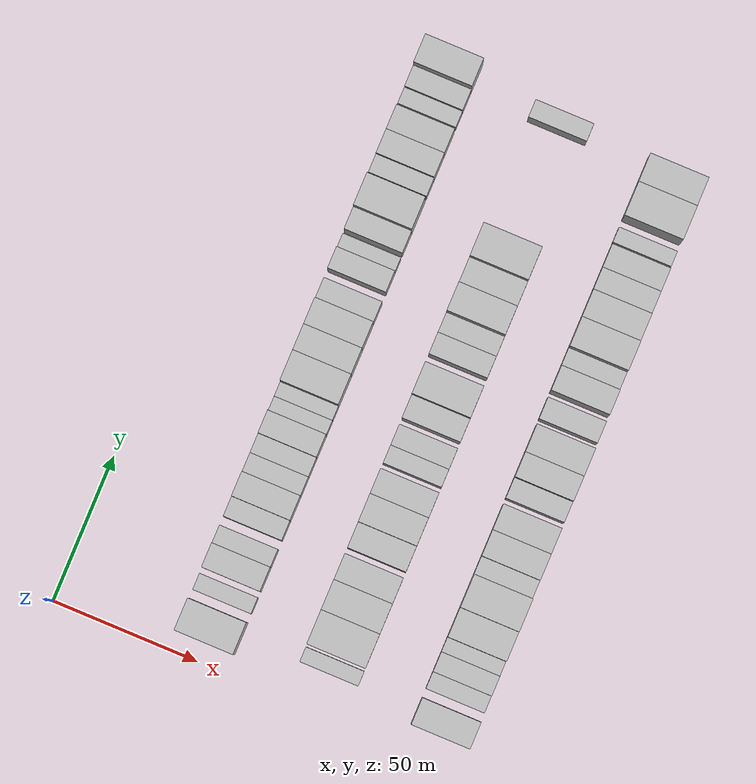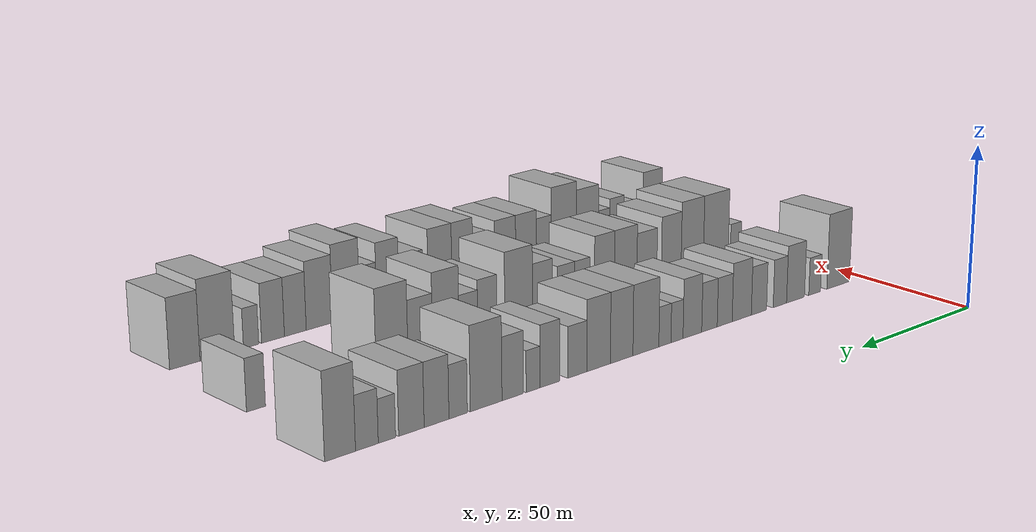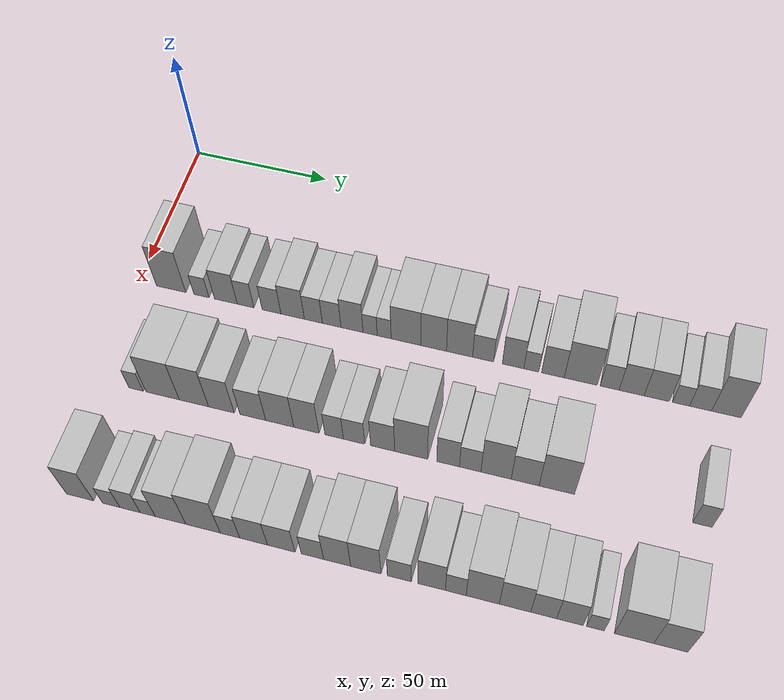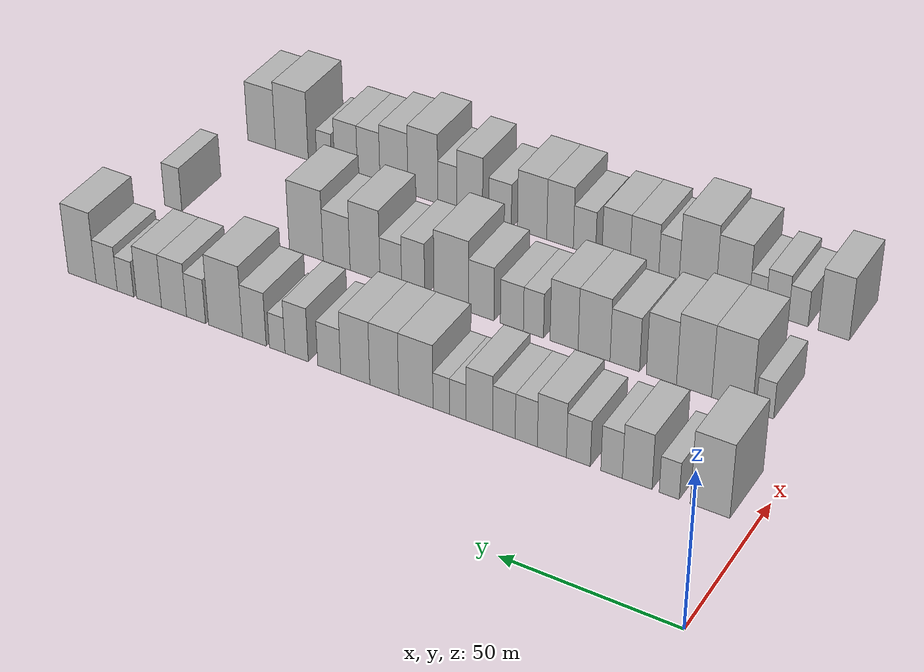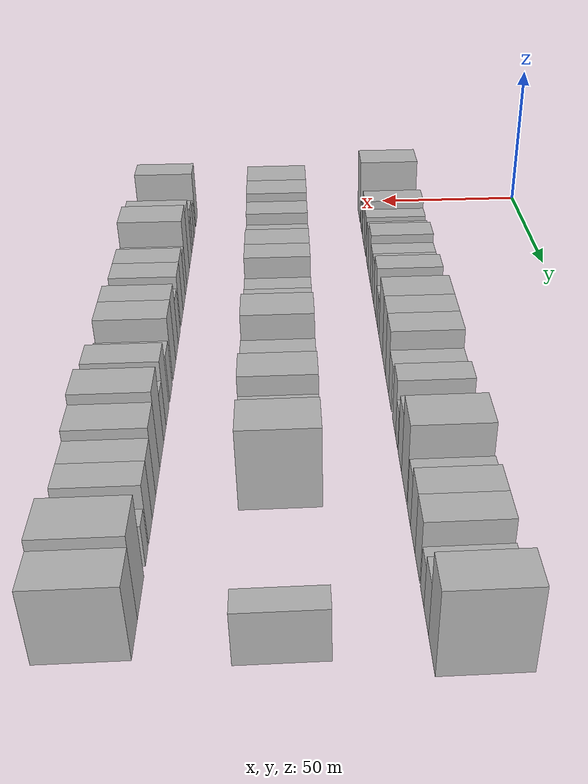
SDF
<sdf version="1.6">
 <world name="default">
  <model name="building_41">
   <static>1</static>
   <pose>50.0000 12.1011 0 0.000000 0.000000 0.000000</pose>
   <link name="link">
    <pose>0 0 12.00 0 0 0</pose>
    <collision name="collision"><geometry><box><size>20.0000 10.9155 24.0000</size></box></geometry></collision>
    <visual name="visual">
     <cast_shadows>0</cast_shadows>
     <geometry><box><size>20.0000 10.9155 24.0000</size></box></geometry>
     <material>
      <script>
       <uri>model://HANNAS_wall/materials/scripts</uri>
       <uri>model://HANNAS_wall/materials/textures</uri>
       <name>vrc/HANNAS_wall</name>
      </script>
     </material>
    </visual>
   </link>
  </model>
  <model name="building_42">
   <static>1</static>
   <pose>50.0000 23.3495 0 0.000000 0.000000 0.000000</pose>
   <link name="link">
    <pose>0 0 6.00 0 0 0</pose>
    <collision name="collision"><geometry><box><size>20.0000 5.5812 12.0000</size></box></geometry></collision>
    <visual name="visual">
     <cast_shadows>0</cast_shadows>
     <geometry><box><size>20.0000 5.5812 12.0000</size></box></geometry>
     <material>
      <script>
       <uri>model://HANNAS_wall/materials/scripts</uri>
       <uri>model://HANNAS_wall/materials/textures</uri>
       <name>vrc/HANNAS_wall</name>
      </script>
     </material>
    </visual>
   </link>
  </model>
  <model name="building_43">
   <static>1</static>
   <pose>50.0000 32.3095 0 0.000000 0.000000 0.000000</pose>
   <link name="link">
    <pose>0 0 9.00 0 0 0</pose>
    <collision name="collision"><geometry><box><size>20.0000 8.3389 18.0000</size></box></geometry></collision>
    <visual name="visual">
     <cast_shadows>0</cast_shadows>
     <geometry><box><size>20.0000 8.3389 18.0000</size></box></geometry>
     <material>
      <script>
       <uri>model://HANNAS_wall/materials/scripts</uri>
       <uri>model://HANNAS_wall/materials/textures</uri>
       <name>vrc/HANNAS_wall</name>
      </script>
     </material>
    </visual>
   </link>
  </model>
  <model name="building_44">
   <static>1</static>
   <pose>50.0000 39.5402 0 0.000000 0.000000 0.000000</pose>
   <link name="link">
    <pose>0 0 7.50 0 0 0</pose>
    <collision name="collision"><geometry><box><size>20.0000 6.1225 15.0000</size></box></geometry></collision>
    <visual name="visual">
     <cast_shadows>0</cast_shadows>
     <geometry><box><size>20.0000 6.1225 15.0000</size></box></geometry>
     <material>
      <script>
       <uri>model://HANNAS_wall/materials/scripts</uri>
       <uri>model://HANNAS_wall/materials/textures</uri>
       <name>vrc/HANNAS_wall</name>
      </script>
     </material>
    </visual>
   </link>
  </model>
  <model name="building_45">
   <static>1</static>
   <pose>50.0000 49.0186 0 0.000000 0.000000 0.000000</pose>
   <link name="link">
    <pose>0 0 7.50 0 0 0</pose>
    <collision name="collision"><geometry><box><size>20.0000 6.8342 15.0000</size></box></geometry></collision>
    <visual name="visual">
     <cast_shadows>0</cast_shadows>
     <geometry><box><size>20.0000 6.8342 15.0000</size></box></geometry>
     <material>
      <script>
       <uri>model://HANNAS_wall/materials/scripts</uri>
       <uri>model://HANNAS_wall/materials/textures</uri>
       <name>vrc/HANNAS_wall</name>
      </script>
     </material>
    </visual>
   </link>
  </model>
  <model name="building_46">
   <static>1</static>
   <pose>50.0000 56.6620 0 0.000000 0.000000 0.000000</pose>
   <link name="link">
    <pose>0 0 9.00 0 0 0</pose>
    <collision name="collision"><geometry><box><size>20.0000 8.4526 18.0000</size></box></geometry></collision>
    <visual name="visual">
     <cast_shadows>0</cast_shadows>
     <geometry><box><size>20.0000 8.4526 18.0000</size></box></geometry>
     <material>
      <script>
       <uri>model://HANNAS_wall/materials/scripts</uri>
       <uri>model://HANNAS_wall/materials/textures</uri>
       <name>vrc/HANNAS_wall</name>
      </script>
     </material>
    </visual>
   </link>
  </model>
  <model name="building_47">
   <static>1</static>
   <pose>50.0000 64.1325 0 0.000000 0.000000 0.000000</pose>
   <link name="link">
    <pose>0 0 7.50 0 0 0</pose>
    <collision name="collision"><geometry><box><size>20.0000 6.4883 15.0000</size></box></geometry></collision>
    <visual name="visual">
     <cast_shadows>0</cast_shadows>
     <geometry><box><size>20.0000 6.4883 15.0000</size></box></geometry>
     <material>
      <script>
       <uri>model://HANNAS_wall/materials/scripts</uri>
       <uri>model://HANNAS_wall/materials/textures</uri>
       <name>vrc/HANNAS_wall</name>
      </script>
     </material>
    </visual>
   </link>
  </model>
  <model name="building_48">
   <static>1</static>
   <pose>50.0000 70.6933 0 0.000000 0.000000 0.000000</pose>
   <link name="link">
    <pose>0 0 7.50 0 0 0</pose>
    <collision name="collision"><geometry><box><size>20.0000 6.6332 15.0000</size></box></geometry></collision>
    <visual name="visual">
     <cast_shadows>0</cast_shadows>
     <geometry><box><size>20.0000 6.6332 15.0000</size></box></geometry>
     <material>
      <script>
       <uri>model://HANNAS_wall/materials/scripts</uri>
       <uri>model://HANNAS_wall/materials/textures</uri>
       <name>vrc/HANNAS_wall</name>
      </script>
     </material>
    </visual>
   </link>
  </model>
  <model name="building_49">
   <static>1</static>
   <pose>50.0000 77.9368 0 0.000000 0.000000 0.000000</pose>
   <link name="link">
    <pose>0 0 9.00 0 0 0</pose>
    <collision name="collision"><geometry><box><size>20.0000 7.8539 18.0000</size></box></geometry></collision>
    <visual name="visual">
     <cast_shadows>0</cast_shadows>
     <geometry><box><size>20.0000 7.8539 18.0000</size></box></geometry>
     <material>
      <script>
       <uri>model://HANNAS_wall/materials/scripts</uri>
       <uri>model://HANNAS_wall/materials/textures</uri>
       <name>vrc/HANNAS_wall</name>
      </script>
     </material>
    </visual>
   </link>
  </model>
  <model name="building_50">
   <static>1</static>
   <pose>50.0000 84.3722 0 0.000000 0.000000 0.000000</pose>
   <link name="link">
    <pose>0 0 6.00 0 0 0</pose>
    <collision name="collision"><geometry><box><size>20.0000 5.0170 12.0000</size></box></geometry></collision>
    <visual name="visual">
     <cast_shadows>0</cast_shadows>
     <geometry><box><size>20.0000 5.0170 12.0000</size></box></geometry>
     <material>
      <script>
       <uri>model://HANNAS_wall/materials/scripts</uri>
       <uri>model://HANNAS_wall/materials/textures</uri>
       <name>vrc/HANNAS_wall</name>
      </script>
     </material>
    </visual>
   </link>
  </model>
  <model name="building_51">
   <static>1</static>
   <pose>50.0000 89.3582 0 0.000000 0.000000 0.000000</pose>
   <link name="link">
    <pose>0 0 6.00 0 0 0</pose>
    <collision name="collision"><geometry><box><size>20.0000 4.9549 12.0000</size></box></geometry></collision>
    <visual name="visual">
     <cast_shadows>0</cast_shadows>
     <geometry><box><size>20.0000 4.9549 12.0000</size></box></geometry>
     <material>
      <script>
       <uri>model://HANNAS_wall/materials/scripts</uri>
       <uri>model://HANNAS_wall/materials/textures</uri>
       <name>vrc/HANNAS_wall</name>
      </script>
     </material>
    </visual>
   </link>
  </model>
  <model name="building_52">
   <static>1</static>
   <pose>50.0000 97.0628 0 0.000000 0.000000 0.000000</pose>
   <link name="link">
    <pose>0 0 10.50 0 0 0</pose>
    <collision name="collision"><geometry><box><size>20.0000 10.4544 21.0000</size></box></geometry></collision>
    <visual name="visual">
     <cast_shadows>0</cast_shadows>
     <geometry><box><size>20.0000 10.4544 21.0000</size></box></geometry>
     <material>
      <script>
       <uri>model://HANNAS_wall/materials/scripts</uri>
       <uri>model://HANNAS_wall/materials/textures</uri>
       <name>vrc/HANNAS_wall</name>
      </script>
     </material>
    </visual>
   </link>
  </model>
  <model name="building_53">
   <static>1</static>
   <pose>50.0000 106.7404 0 0.000000 0.000000 0.000000</pose>
   <link name="link">
    <pose>0 0 10.50 0 0 0</pose>
    <collision name="collision"><geometry><box><size>20.0000 8.9007 21.0000</size></box></geometry></collision>
    <visual name="visual">
     <cast_shadows>0</cast_shadows>
     <geometry><box><size>20.0000 8.9007 21.0000</size></box></geometry>
     <material>
      <script>
       <uri>model://HANNAS_wall/materials/scripts</uri>
       <uri>model://HANNAS_wall/materials/textures</uri>
       <name>vrc/HANNAS_wall</name>
      </script>
     </material>
    </visual>
   </link>
  </model>
  <model name="building_54">
   <static>1</static>
   <pose>50.0000 115.7202 0 0.000000 0.000000 0.000000</pose>
   <link name="link">
    <pose>0 0 10.50 0 0 0</pose>
    <collision name="collision"><geometry><box><size>20.0000 9.0589 21.0000</size></box></geometry></collision>
    <visual name="visual">
     <cast_shadows>0</cast_shadows>
     <geometry><box><size>20.0000 9.0589 21.0000</size></box></geometry>
     <material>
      <script>
       <uri>model://HANNAS_wall/materials/scripts</uri>
       <uri>model://HANNAS_wall/materials/textures</uri>
       <name>vrc/HANNAS_wall</name>
      </script>
     </material>
    </visual>
   </link>
  </model>
  <model name="building_55">
   <static>1</static>
   <pose>50.0000 123.8697 0 0.000000 0.000000 0.000000</pose>
   <link name="link">
    <pose>0 0 7.50 0 0 0</pose>
    <collision name="collision"><geometry><box><size>20.0000 7.2401 15.0000</size></box></geometry></collision>
    <visual name="visual">
     <cast_shadows>0</cast_shadows>
     <geometry><box><size>20.0000 7.2401 15.0000</size></box></geometry>
     <material>
      <script>
       <uri>model://HANNAS_wall/materials/scripts</uri>
       <uri>model://HANNAS_wall/materials/textures</uri>
       <name>vrc/HANNAS_wall</name>
      </script>
     </material>
    </visual>
   </link>
  </model>
  <model name="building_56">
   <static>1</static>
   <pose>50.0000 134.1823 0 0.000000 0.000000 0.000000</pose>
   <link name="link">
    <pose>0 0 9.00 0 0 0</pose>
    <collision name="collision"><geometry><box><size>20.0000 7.3850 18.0000</size></box></geometry></collision>
    <visual name="visual">
     <cast_shadows>0</cast_shadows>
     <geometry><box><size>20.0000 7.3850 18.0000</size></box></geometry>
     <material>
      <script>
       <uri>model://HANNAS_wall/materials/scripts</uri>
       <uri>model://HANNAS_wall/materials/textures</uri>
       <name>vrc/HANNAS_wall</name>
      </script>
     </material>
    </visual>
   </link>
  </model>
  <model name="building_57">
   <static>1</static>
   <pose>50.0000 140.3996 0 0.000000 0.000000 0.000000</pose>
   <link name="link">
    <pose>0 0 6.00 0 0 0</pose>
    <collision name="collision"><geometry><box><size>20.0000 5.0495 12.0000</size></box></geometry></collision>
    <visual name="visual">
     <cast_shadows>0</cast_shadows>
     <geometry><box><size>20.0000 5.0495 12.0000</size></box></geometry>
     <material>
      <script>
       <uri>model://HANNAS_wall/materials/scripts</uri>
       <uri>model://HANNAS_wall/materials/textures</uri>
       <name>vrc/HANNAS_wall</name>
      </script>
     </material>
    </visual>
   </link>
  </model>
  <model name="building_58">
   <static>1</static>
   <pose>50.0000 147.7551 0 0.000000 0.000000 0.000000</pose>
   <link name="link">
    <pose>0 0 9.00 0 0 0</pose>
    <collision name="collision"><geometry><box><size>20.0000 7.6616 18.0000</size></box></geometry></collision>
    <visual name="visual">
     <cast_shadows>0</cast_shadows>
     <geometry><box><size>20.0000 7.6616 18.0000</size></box></geometry>
     <material>
      <script>
       <uri>model://HANNAS_wall/materials/scripts</uri>
       <uri>model://HANNAS_wall/materials/textures</uri>
       <name>vrc/HANNAS_wall</name>
      </script>
     </material>
    </visual>
   </link>
  </model>
  <model name="building_59">
   <static>1</static>
   <pose>50.0000 157.1529 0 0.000000 0.000000 0.000000</pose>
   <link name="link">
    <pose>0 0 12.00 0 0 0</pose>
    <collision name="collision"><geometry><box><size>20.0000 11.1340 24.0000</size></box></geometry></collision>
    <visual name="visual">
     <cast_shadows>0</cast_shadows>
     <geometry><box><size>20.0000 11.1340 24.0000</size></box></geometry>
     <material>
      <script>
       <uri>model://HANNAS_wall/materials/scripts</uri>
       <uri>model://HANNAS_wall/materials/textures</uri>
       <name>vrc/HANNAS_wall</name>
      </script>
     </material>
    </visual>
   </link>
  </model>
  <model name="building_60">
   <static>1</static>
   <pose>50.0000 166.8681 0 0.000000 0.000000 0.000000</pose>
   <link name="link">
    <pose>0 0 7.50 0 0 0</pose>
    <collision name="collision"><geometry><box><size>20.0000 6.2963 15.0000</size></box></geometry></collision>
    <visual name="visual">
     <cast_shadows>0</cast_shadows>
     <geometry><box><size>20.0000 6.2963 15.0000</size></box></geometry>
     <material>
      <script>
       <uri>model://HANNAS_wall/materials/scripts</uri>
       <uri>model://HANNAS_wall/materials/textures</uri>
       <name>vrc/HANNAS_wall</name>
      </script>
     </material>
    </visual>
   </link>
  </model>
  <model name="building_61">
   <static>1</static>
   <pose>50.0000 174.1851 0 0.000000 0.000000 0.000000</pose>
   <link name="link">
    <pose>0 0 9.00 0 0 0</pose>
    <collision name="collision"><geometry><box><size>20.0000 8.3378 18.0000</size></box></geometry></collision>
    <visual name="visual">
     <cast_shadows>0</cast_shadows>
     <geometry><box><size>20.0000 8.3378 18.0000</size></box></geometry>
     <material>
      <script>
       <uri>model://HANNAS_wall/materials/scripts</uri>
       <uri>model://HANNAS_wall/materials/textures</uri>
       <name>vrc/HANNAS_wall</name>
      </script>
     </material>
    </visual>
   </link>
  </model>
  <model name="building_62">
   <static>1</static>
   <pose>50.0000 182.5561 0 0.000000 0.000000 0.000000</pose>
   <link name="link">
    <pose>0 0 9.00 0 0 0</pose>
    <collision name="collision"><geometry><box><size>20.0000 8.4043 18.0000</size></box></geometry></collision>
    <visual name="visual">
     <cast_shadows>0</cast_shadows>
     <geometry><box><size>20.0000 8.4043 18.0000</size></box></geometry>
     <material>
      <script>
       <uri>model://HANNAS_wall/materials/scripts</uri>
       <uri>model://HANNAS_wall/materials/textures</uri>
       <name>vrc/HANNAS_wall</name>
      </script>
     </material>
    </visual>
   </link>
  </model>
  <model name="building_63">
   <static>1</static>
   <pose>50.0000 190.5556 0 0.000000 0.000000 0.000000</pose>
   <link name="link">
    <pose>0 0 6.00 0 0 0</pose>
    <collision name="collision"><geometry><box><size>20.0000 5.5946 12.0000</size></box></geometry></collision>
    <visual name="visual">
     <cast_shadows>0</cast_shadows>
     <geometry><box><size>20.0000 5.5946 12.0000</size></box></geometry>
     <material>
      <script>
       <uri>model://HANNAS_wall/materials/scripts</uri>
       <uri>model://HANNAS_wall/materials/textures</uri>
       <name>vrc/HANNAS_wall</name>
      </script>
     </material>
    </visual>
   </link>
  </model>
  <model name="building_64">
   <static>1</static>
   <pose>50.0000 196.9684 0 0.000000 0.000000 0.000000</pose>
   <link name="link">
    <pose>0 0 7.50 0 0 0</pose>
    <collision name="collision"><geometry><box><size>20.0000 7.2310 15.0000</size></box></geometry></collision>
    <visual name="visual">
     <cast_shadows>0</cast_shadows>
     <geometry><box><size>20.0000 7.2310 15.0000</size></box></geometry>
     <material>
      <script>
       <uri>model://HANNAS_wall/materials/scripts</uri>
       <uri>model://HANNAS_wall/materials/textures</uri>
       <name>vrc/HANNAS_wall</name>
      </script>
     </material>
    </visual>
   </link>
  </model>
  <model name="building_65">
   <static>1</static>
   <pose>50.0000 205.4132 0 0.000000 0.000000 0.000000</pose>
   <link name="link">
    <pose>0 0 12.00 0 0 0</pose>
    <collision name="collision"><geometry><box><size>20.0000 9.6585 24.0000</size></box></geometry></collision>
    <visual name="visual">
     <cast_shadows>0</cast_shadows>
     <geometry><box><size>20.0000 9.6585 24.0000</size></box></geometry>
     <material>
      <script>
       <uri>model://HANNAS_wall/materials/scripts</uri>
       <uri>model://HANNAS_wall/materials/textures</uri>
       <name>vrc/HANNAS_wall</name>
      </script>
     </material>
    </visual>
   </link>
  </model>
  <model name="building_132">
   <static>1</static>
   <pose>90.0000 15.1945 0 0.000000 0.000000 0.000000</pose>
   <link name="link">
    <pose>0 0 6.00 0 0 0</pose>
    <collision name="collision"><geometry><box><size>20.0000 5.0530 12.0000</size></box></geometry></collision>
    <visual name="visual">
     <cast_shadows>0</cast_shadows>
     <geometry><box><size>20.0000 5.0530 12.0000</size></box></geometry>
     <material>
      <script>
       <uri>model://HANNAS_wall/materials/scripts</uri>
       <uri>model://HANNAS_wall/materials/textures</uri>
       <name>vrc/HANNAS_wall</name>
      </script>
     </material>
    </visual>
   </link>
  </model>
  <model name="building_133">
   <static>1</static>
   <pose>90.0000 24.5679 0 0.000000 0.000000 0.000000</pose>
   <link name="link">
    <pose>0 0 12.00 0 0 0</pose>
    <collision name="collision"><geometry><box><size>20.0000 11.6937 24.0000</size></box></geometry></collision>
    <visual name="visual">
     <cast_shadows>0</cast_shadows>
     <geometry><box><size>20.0000 11.6937 24.0000</size></box></geometry>
     <material>
      <script>
       <uri>model://HANNAS_wall/materials/scripts</uri>
       <uri>model://HANNAS_wall/materials/textures</uri>
       <name>vrc/HANNAS_wall</name>
      </script>
     </material>
    </visual>
   </link>
  </model>
  <model name="building_134">
   <static>1</static>
   <pose>90.0000 35.5404 0 0.000000 0.000000 0.000000</pose>
   <link name="link">
    <pose>0 0 12.00 0 0 0</pose>
    <collision name="collision"><geometry><box><size>20.0000 10.2514 24.0000</size></box></geometry></collision>
    <visual name="visual">
     <cast_shadows>0</cast_shadows>
     <geometry><box><size>20.0000 10.2514 24.0000</size></box></geometry>
     <material>
      <script>
       <uri>model://HANNAS_wall/materials/scripts</uri>
       <uri>model://HANNAS_wall/materials/textures</uri>
       <name>vrc/HANNAS_wall</name>
      </script>
     </material>
    </visual>
   </link>
  </model>
  <model name="building_135">
   <static>1</static>
   <pose>90.0000 45.1159 0 0.000000 0.000000 0.000000</pose>
   <link name="link">
    <pose>0 0 10.50 0 0 0</pose>
    <collision name="collision"><geometry><box><size>20.0000 8.8995 21.0000</size></box></geometry></collision>
    <visual name="visual">
     <cast_shadows>0</cast_shadows>
     <geometry><box><size>20.0000 8.8995 21.0000</size></box></geometry>
     <material>
      <script>
       <uri>model://HANNAS_wall/materials/scripts</uri>
       <uri>model://HANNAS_wall/materials/textures</uri>
       <name>vrc/HANNAS_wall</name>
      </script>
     </material>
    </visual>
   </link>
  </model>
  <model name="building_136">
   <static>1</static>
   <pose>90.0000 55.9717 0 0.000000 0.000000 0.000000</pose>
   <link name="link">
    <pose>0 0 9.00 0 0 0</pose>
    <collision name="collision"><geometry><box><size>20.0000 8.8121 18.0000</size></box></geometry></collision>
    <visual name="visual">
     <cast_shadows>0</cast_shadows>
     <geometry><box><size>20.0000 8.8121 18.0000</size></box></geometry>
     <material>
      <script>
       <uri>model://HANNAS_wall/materials/scripts</uri>
       <uri>model://HANNAS_wall/materials/textures</uri>
       <name>vrc/HANNAS_wall</name>
      </script>
     </material>
    </visual>
   </link>
  </model>
  <model name="building_137">
   <static>1</static>
   <pose>90.0000 65.1963 0 0.000000 0.000000 0.000000</pose>
   <link name="link">
    <pose>0 0 10.50 0 0 0</pose>
    <collision name="collision"><geometry><box><size>20.0000 9.6371 21.0000</size></box></geometry></collision>
    <visual name="visual">
     <cast_shadows>0</cast_shadows>
     <geometry><box><size>20.0000 9.6371 21.0000</size></box></geometry>
     <material>
      <script>
       <uri>model://HANNAS_wall/materials/scripts</uri>
       <uri>model://HANNAS_wall/materials/textures</uri>
       <name>vrc/HANNAS_wall</name>
      </script>
     </material>
    </visual>
   </link>
  </model>
  <model name="building_138">
   <static>1</static>
   <pose>90.0000 74.2967 0 0.000000 0.000000 0.000000</pose>
   <link name="link">
    <pose>0 0 10.50 0 0 0</pose>
    <collision name="collision"><geometry><box><size>20.0000 8.5638 21.0000</size></box></geometry></collision>
    <visual name="visual">
     <cast_shadows>0</cast_shadows>
     <geometry><box><size>20.0000 8.5638 21.0000</size></box></geometry>
     <material>
      <script>
       <uri>model://HANNAS_wall/materials/scripts</uri>
       <uri>model://HANNAS_wall/materials/textures</uri>
       <name>vrc/HANNAS_wall</name>
      </script>
     </material>
    </visual>
   </link>
  </model>
  <model name="building_139">
   <static>1</static>
   <pose>90.0000 83.6740 0 0.000000 0.000000 0.000000</pose>
   <link name="link">
    <pose>0 0 7.50 0 0 0</pose>
    <collision name="collision"><geometry><box><size>20.0000 6.1907 15.0000</size></box></geometry></collision>
    <visual name="visual">
     <cast_shadows>0</cast_shadows>
     <geometry><box><size>20.0000 6.1907 15.0000</size></box></geometry>
     <material>
      <script>
       <uri>model://HANNAS_wall/materials/scripts</uri>
       <uri>model://HANNAS_wall/materials/textures</uri>
       <name>vrc/HANNAS_wall</name>
      </script>
     </material>
    </visual>
   </link>
  </model>
  <model name="building_140">
   <static>1</static>
   <pose>90.0000 90.3516 0 0.000000 0.000000 0.000000</pose>
   <link name="link">
    <pose>0 0 7.50 0 0 0</pose>
    <collision name="collision"><geometry><box><size>20.0000 7.1645 15.0000</size></box></geometry></collision>
    <visual name="visual">
     <cast_shadows>0</cast_shadows>
     <geometry><box><size>20.0000 7.1645 15.0000</size></box></geometry>
     <material>
      <script>
       <uri>model://HANNAS_wall/materials/scripts</uri>
       <uri>model://HANNAS_wall/materials/textures</uri>
       <name>vrc/HANNAS_wall</name>
      </script>
     </material>
    </visual>
   </link>
  </model>
  <model name="building_141">
   <static>1</static>
   <pose>90.0000 99.9401 0 0.000000 0.000000 0.000000</pose>
   <link name="link">
    <pose>0 0 9.00 0 0 0</pose>
    <collision name="collision"><geometry><box><size>20.0000 8.0126 18.0000</size></box></geometry></collision>
    <visual name="visual">
     <cast_shadows>0</cast_shadows>
     <geometry><box><size>20.0000 8.0126 18.0000</size></box></geometry>
     <material>
      <script>
       <uri>model://HANNAS_wall/materials/scripts</uri>
       <uri>model://HANNAS_wall/materials/textures</uri>
       <name>vrc/HANNAS_wall</name>
      </script>
     </material>
    </visual>
   </link>
  </model>
  <model name="building_142">
   <static>1</static>
   <pose>90.0000 109.4034 0 0.000000 0.000000 0.000000</pose>
   <link name="link">
    <pose>0 0 12.00 0 0 0</pose>
    <collision name="collision"><geometry><box><size>20.0000 10.9140 24.0000</size></box></geometry></collision>
    <visual name="visual">
     <cast_shadows>0</cast_shadows>
     <geometry><box><size>20.0000 10.9140 24.0000</size></box></geometry>
     <material>
      <script>
       <uri>model://HANNAS_wall/materials/scripts</uri>
       <uri>model://HANNAS_wall/materials/textures</uri>
       <name>vrc/HANNAS_wall</name>
      </script>
     </material>
    </visual>
   </link>
  </model>
  <model name="building_143">
   <static>1</static>
   <pose>90.0000 121.5740 0 0.000000 0.000000 0.000000</pose>
   <link name="link">
    <pose>0 0 9.00 0 0 0</pose>
    <collision name="collision"><geometry><box><size>20.0000 7.4272 18.0000</size></box></geometry></collision>
    <visual name="visual">
     <cast_shadows>0</cast_shadows>
     <geometry><box><size>20.0000 7.4272 18.0000</size></box></geometry>
     <material>
      <script>
       <uri>model://HANNAS_wall/materials/scripts</uri>
       <uri>model://HANNAS_wall/materials/textures</uri>
       <name>vrc/HANNAS_wall</name>
      </script>
     </material>
    </visual>
   </link>
  </model>
  <model name="building_144">
   <static>1</static>
   <pose>90.0000 128.7950 0 0.000000 0.000000 0.000000</pose>
   <link name="link">
    <pose>0 0 7.50 0 0 0</pose>
    <collision name="collision"><geometry><box><size>20.0000 7.0148 15.0000</size></box></geometry></collision>
    <visual name="visual">
     <cast_shadows>0</cast_shadows>
     <geometry><box><size>20.0000 7.0148 15.0000</size></box></geometry>
     <material>
      <script>
       <uri>model://HANNAS_wall/materials/scripts</uri>
       <uri>model://HANNAS_wall/materials/textures</uri>
       <name>vrc/HANNAS_wall</name>
      </script>
     </material>
    </visual>
   </link>
  </model>
  <model name="building_145">
   <static>1</static>
   <pose>90.0000 137.2158 0 0.000000 0.000000 0.000000</pose>
   <link name="link">
    <pose>0 0 12.00 0 0 0</pose>
    <collision name="collision"><geometry><box><size>20.0000 9.8268 24.0000</size></box></geometry></collision>
    <visual name="visual">
     <cast_shadows>0</cast_shadows>
     <geometry><box><size>20.0000 9.8268 24.0000</size></box></geometry>
     <material>
      <script>
       <uri>model://HANNAS_wall/materials/scripts</uri>
       <uri>model://HANNAS_wall/materials/textures</uri>
       <name>vrc/HANNAS_wall</name>
      </script>
     </material>
    </visual>
   </link>
  </model>
  <model name="building_146">
   <static>1</static>
   <pose>90.0000 146.5997 0 0.000000 0.000000 0.000000</pose>
   <link name="link">
    <pose>0 0 9.00 0 0 0</pose>
    <collision name="collision"><geometry><box><size>20.0000 8.9409 18.0000</size></box></geometry></collision>
    <visual name="visual">
     <cast_shadows>0</cast_shadows>
     <geometry><box><size>20.0000 8.9409 18.0000</size></box></geometry>
     <material>
      <script>
       <uri>model://HANNAS_wall/materials/scripts</uri>
       <uri>model://HANNAS_wall/materials/textures</uri>
       <name>vrc/HANNAS_wall</name>
      </script>
     </material>
    </visual>
   </link>
  </model>
  <model name="building_147">
   <static>1</static>
   <pose>90.0000 156.7472 0 0.000000 0.000000 0.000000</pose>
   <link name="link">
    <pose>0 0 12.00 0 0 0</pose>
    <collision name="collision"><geometry><box><size>20.0000 11.3540 24.0000</size></box></geometry></collision>
    <visual name="visual">
     <cast_shadows>0</cast_shadows>
     <geometry><box><size>20.0000 11.3540 24.0000</size></box></geometry>
     <material>
      <script>
       <uri>model://HANNAS_wall/materials/scripts</uri>
       <uri>model://HANNAS_wall/materials/textures</uri>
       <name>vrc/HANNAS_wall</name>
      </script>
     </material>
    </visual>
   </link>
  </model>
  <model name="building_148">
   <static>1</static>
   <pose>90.0000 202.5070 0 0.000000 0.000000 0.000000</pose>
   <link name="link">
    <pose>0 0 7.50 0 0 0</pose>
    <collision name="collision"><geometry><box><size>20.0000 6.0553 15.0000</size></box></geometry></collision>
    <visual name="visual">
     <cast_shadows>0</cast_shadows>
     <geometry><box><size>20.0000 6.0553 15.0000</size></box></geometry>
     <material>
      <script>
       <uri>model://HANNAS_wall/materials/scripts</uri>
       <uri>model://HANNAS_wall/materials/textures</uri>
       <name>vrc/HANNAS_wall</name>
      </script>
     </material>
    </visual>
   </link>
  </model>
  <model name="building_210">
   <static>1</static>
   <pose>130.0000 12.6894 0 0.000000 0.000000 0.000000</pose>
   <link name="link">
    <pose>0 0 10.50 0 0 0</pose>
    <collision name="collision"><geometry><box><size>20.0000 9.1360 21.0000</size></box></geometry></collision>
    <visual name="visual">
     <cast_shadows>0</cast_shadows>
     <geometry><box><size>20.0000 9.1360 21.0000</size></box></geometry>
     <material>
      <script>
       <uri>model://HANNAS_wall/materials/scripts</uri>
       <uri>model://HANNAS_wall/materials/textures</uri>
       <name>vrc/HANNAS_wall</name>
      </script>
     </material>
    </visual>
   </link>
  </model>
  <model name="building_211">
   <static>1</static>
   <pose>130.0000 23.1674 0 0.000000 0.000000 0.000000</pose>
   <link name="link">
    <pose>0 0 6.00 0 0 0</pose>
    <collision name="collision"><geometry><box><size>20.0000 5.8200 12.0000</size></box></geometry></collision>
    <visual name="visual">
     <cast_shadows>0</cast_shadows>
     <geometry><box><size>20.0000 5.8200 12.0000</size></box></geometry>
     <material>
      <script>
       <uri>model://HANNAS_wall/materials/scripts</uri>
       <uri>model://HANNAS_wall/materials/textures</uri>
       <name>vrc/HANNAS_wall</name>
      </script>
     </material>
    </visual>
   </link>
  </model>
  <model name="building_212">
   <static>1</static>
   <pose>130.0000 29.4724 0 0.000000 0.000000 0.000000</pose>
   <link name="link">
    <pose>0 0 7.50 0 0 0</pose>
    <collision name="collision"><geometry><box><size>20.0000 6.7900 15.0000</size></box></geometry></collision>
    <visual name="visual">
     <cast_shadows>0</cast_shadows>
     <geometry><box><size>20.0000 6.7900 15.0000</size></box></geometry>
     <material>
      <script>
       <uri>model://HANNAS_wall/materials/scripts</uri>
       <uri>model://HANNAS_wall/materials/textures</uri>
       <name>vrc/HANNAS_wall</name>
      </script>
     </material>
    </visual>
   </link>
  </model>
  <model name="building_213">
   <static>1</static>
   <pose>130.0000 35.3639 0 0.000000 0.000000 0.000000</pose>
   <link name="link">
    <pose>0 0 6.00 0 0 0</pose>
    <collision name="collision"><geometry><box><size>20.0000 4.9930 12.0000</size></box></geometry></collision>
    <visual name="visual">
     <cast_shadows>0</cast_shadows>
     <geometry><box><size>20.0000 4.9930 12.0000</size></box></geometry>
     <material>
      <script>
       <uri>model://HANNAS_wall/materials/scripts</uri>
       <uri>model://HANNAS_wall/materials/textures</uri>
       <name>vrc/HANNAS_wall</name>
      </script>
     </material>
    </visual>
   </link>
  </model>
  <model name="building_214">
   <static>1</static>
   <pose>130.0000 42.8924 0 0.000000 0.000000 0.000000</pose>
   <link name="link">
    <pose>0 0 10.50 0 0 0</pose>
    <collision name="collision"><geometry><box><size>20.0000 10.0639 21.0000</size></box></geometry></collision>
    <visual name="visual">
     <cast_shadows>0</cast_shadows>
     <geometry><box><size>20.0000 10.0639 21.0000</size></box></geometry>
     <material>
      <script>
       <uri>model://HANNAS_wall/materials/scripts</uri>
       <uri>model://HANNAS_wall/materials/textures</uri>
       <name>vrc/HANNAS_wall</name>
      </script>
     </material>
    </visual>
   </link>
  </model>
  <model name="building_215">
   <static>1</static>
   <pose>130.0000 53.5771 0 0.000000 0.000000 0.000000</pose>
   <link name="link">
    <pose>0 0 12.00 0 0 0</pose>
    <collision name="collision"><geometry><box><size>20.0000 11.3055 24.0000</size></box></geometry></collision>
    <visual name="visual">
     <cast_shadows>0</cast_shadows>
     <geometry><box><size>20.0000 11.3055 24.0000</size></box></geometry>
     <material>
      <script>
       <uri>model://HANNAS_wall/materials/scripts</uri>
       <uri>model://HANNAS_wall/materials/textures</uri>
       <name>vrc/HANNAS_wall</name>
      </script>
     </material>
    </visual>
   </link>
  </model>
  <model name="building_216">
   <static>1</static>
   <pose>130.0000 62.3815 0 0.000000 0.000000 0.000000</pose>
   <link name="link">
    <pose>0 0 7.50 0 0 0</pose>
    <collision name="collision"><geometry><box><size>20.0000 6.3035 15.0000</size></box></geometry></collision>
    <visual name="visual">
     <cast_shadows>0</cast_shadows>
     <geometry><box><size>20.0000 6.3035 15.0000</size></box></geometry>
     <material>
      <script>
       <uri>model://HANNAS_wall/materials/scripts</uri>
       <uri>model://HANNAS_wall/materials/textures</uri>
       <name>vrc/HANNAS_wall</name>
      </script>
     </material>
    </visual>
   </link>
  </model>
  <model name="building_217">
   <static>1</static>
   <pose>130.0000 70.0217 0 0.000000 0.000000 0.000000</pose>
   <link name="link">
    <pose>0 0 9.00 0 0 0</pose>
    <collision name="collision"><geometry><box><size>20.0000 8.9768 18.0000</size></box></geometry></collision>
    <visual name="visual">
     <cast_shadows>0</cast_shadows>
     <geometry><box><size>20.0000 8.9768 18.0000</size></box></geometry>
     <material>
      <script>
       <uri>model://HANNAS_wall/materials/scripts</uri>
       <uri>model://HANNAS_wall/materials/textures</uri>
       <name>vrc/HANNAS_wall</name>
      </script>
     </material>
    </visual>
   </link>
  </model>
  <model name="building_218">
   <static>1</static>
   <pose>130.0000 78.9306 0 0.000000 0.000000 0.000000</pose>
   <link name="link">
    <pose>0 0 9.00 0 0 0</pose>
    <collision name="collision"><geometry><box><size>20.0000 8.8411 18.0000</size></box></geometry></collision>
    <visual name="visual">
     <cast_shadows>0</cast_shadows>
     <geometry><box><size>20.0000 8.8411 18.0000</size></box></geometry>
     <material>
      <script>
       <uri>model://HANNAS_wall/materials/scripts</uri>
       <uri>model://HANNAS_wall/materials/textures</uri>
       <name>vrc/HANNAS_wall</name>
      </script>
     </material>
    </visual>
   </link>
  </model>
  <model name="building_219">
   <static>1</static>
   <pose>130.0000 88.9022 0 0.000000 0.000000 0.000000</pose>
   <link name="link">
    <pose>0 0 7.50 0 0 0</pose>
    <collision name="collision"><geometry><box><size>20.0000 7.1022 15.0000</size></box></geometry></collision>
    <visual name="visual">
     <cast_shadows>0</cast_shadows>
     <geometry><box><size>20.0000 7.1022 15.0000</size></box></geometry>
     <material>
      <script>
       <uri>model://HANNAS_wall/materials/scripts</uri>
       <uri>model://HANNAS_wall/materials/textures</uri>
       <name>vrc/HANNAS_wall</name>
      </script>
     </material>
    </visual>
   </link>
  </model>
  <model name="building_220">
   <static>1</static>
   <pose>130.0000 96.7344 0 0.000000 0.000000 0.000000</pose>
   <link name="link">
    <pose>0 0 10.50 0 0 0</pose>
    <collision name="collision"><geometry><box><size>20.0000 8.5622 21.0000</size></box></geometry></collision>
    <visual name="visual">
     <cast_shadows>0</cast_shadows>
     <geometry><box><size>20.0000 8.5622 21.0000</size></box></geometry>
     <material>
      <script>
       <uri>model://HANNAS_wall/materials/scripts</uri>
       <uri>model://HANNAS_wall/materials/textures</uri>
       <name>vrc/HANNAS_wall</name>
      </script>
     </material>
    </visual>
   </link>
  </model>
  <model name="building_221">
   <static>1</static>
   <pose>130.0000 105.7807 0 0.000000 0.000000 0.000000</pose>
   <link name="link">
    <pose>0 0 10.50 0 0 0</pose>
    <collision name="collision"><geometry><box><size>20.0000 9.5304 21.0000</size></box></geometry></collision>
    <visual name="visual">
     <cast_shadows>0</cast_shadows>
     <geometry><box><size>20.0000 9.5304 21.0000</size></box></geometry>
     <material>
      <script>
       <uri>model://HANNAS_wall/materials/scripts</uri>
       <uri>model://HANNAS_wall/materials/textures</uri>
       <name>vrc/HANNAS_wall</name>
      </script>
     </material>
    </visual>
   </link>
  </model>
  <model name="building_222">
   <static>1</static>
   <pose>130.0000 116.2775 0 0.000000 0.000000 0.000000</pose>
   <link name="link">
    <pose>0 0 7.50 0 0 0</pose>
    <collision name="collision"><geometry><box><size>20.0000 7.4631 15.0000</size></box></geometry></collision>
    <visual name="visual">
     <cast_shadows>0</cast_shadows>
     <geometry><box><size>20.0000 7.4631 15.0000</size></box></geometry>
     <material>
      <script>
       <uri>model://HANNAS_wall/materials/scripts</uri>
       <uri>model://HANNAS_wall/materials/textures</uri>
       <name>vrc/HANNAS_wall</name>
      </script>
     </material>
    </visual>
   </link>
  </model>
  <model name="building_223">
   <static>1</static>
   <pose>130.0000 126.2848 0 0.000000 0.000000 0.000000</pose>
   <link name="link">
    <pose>0 0 10.50 0 0 0</pose>
    <collision name="collision"><geometry><box><size>20.0000 8.5516 21.0000</size></box></geometry></collision>
    <visual name="visual">
     <cast_shadows>0</cast_shadows>
     <geometry><box><size>20.0000 8.5516 21.0000</size></box></geometry>
     <material>
      <script>
       <uri>model://HANNAS_wall/materials/scripts</uri>
       <uri>model://HANNAS_wall/materials/textures</uri>
       <name>vrc/HANNAS_wall</name>
      </script>
     </material>
    </visual>
   </link>
  </model>
  <model name="building_224">
   <static>1</static>
   <pose>130.0000 133.7470 0 0.000000 0.000000 0.000000</pose>
   <link name="link">
    <pose>0 0 7.50 0 0 0</pose>
    <collision name="collision"><geometry><box><size>20.0000 6.3727 15.0000</size></box></geometry></collision>
    <visual name="visual">
     <cast_shadows>0</cast_shadows>
     <geometry><box><size>20.0000 6.3727 15.0000</size></box></geometry>
     <material>
      <script>
       <uri>model://HANNAS_wall/materials/scripts</uri>
       <uri>model://HANNAS_wall/materials/textures</uri>
       <name>vrc/HANNAS_wall</name>
      </script>
     </material>
    </visual>
   </link>
  </model>
  <model name="building_225">
   <static>1</static>
   <pose>130.0000 141.9893 0 0.000000 0.000000 0.000000</pose>
   <link name="link">
    <pose>0 0 12.00 0 0 0</pose>
    <collision name="collision"><geometry><box><size>20.0000 10.1118 24.0000</size></box></geometry></collision>
    <visual name="visual">
     <cast_shadows>0</cast_shadows>
     <geometry><box><size>20.0000 10.1118 24.0000</size></box></geometry>
     <material>
      <script>
       <uri>model://HANNAS_wall/materials/scripts</uri>
       <uri>model://HANNAS_wall/materials/textures</uri>
       <name>vrc/HANNAS_wall</name>
      </script>
     </material>
    </visual>
   </link>
  </model>
  <model name="building_226">
   <static>1</static>
   <pose>130.0000 151.8302 0 0.000000 0.000000 0.000000</pose>
   <link name="link">
    <pose>0 0 10.50 0 0 0</pose>
    <collision name="collision"><geometry><box><size>20.0000 9.5702 21.0000</size></box></geometry></collision>
    <visual name="visual">
     <cast_shadows>0</cast_shadows>
     <geometry><box><size>20.0000 9.5702 21.0000</size></box></geometry>
     <material>
      <script>
       <uri>model://HANNAS_wall/materials/scripts</uri>
       <uri>model://HANNAS_wall/materials/textures</uri>
       <name>vrc/HANNAS_wall</name>
      </script>
     </material>
    </visual>
   </link>
  </model>
  <model name="building_227">
   <static>1</static>
   <pose>130.0000 160.5038 0 0.000000 0.000000 0.000000</pose>
   <link name="link">
    <pose>0 0 9.00 0 0 0</pose>
    <collision name="collision"><geometry><box><size>20.0000 7.7769 18.0000</size></box></geometry></collision>
    <visual name="visual">
     <cast_shadows>0</cast_shadows>
     <geometry><box><size>20.0000 7.7769 18.0000</size></box></geometry>
     <material>
      <script>
       <uri>model://HANNAS_wall/materials/scripts</uri>
       <uri>model://HANNAS_wall/materials/textures</uri>
       <name>vrc/HANNAS_wall</name>
      </script>
     </material>
    </visual>
   </link>
  </model>
  <model name="building_228">
   <static>1</static>
   <pose>130.0000 168.3873 0 0.000000 0.000000 0.000000</pose>
   <link name="link">
    <pose>0 0 9.00 0 0 0</pose>
    <collision name="collision"><geometry><box><size>20.0000 7.9900 18.0000</size></box></geometry></collision>
    <visual name="visual">
     <cast_shadows>0</cast_shadows>
     <geometry><box><size>20.0000 7.9900 18.0000</size></box></geometry>
     <material>
      <script>
       <uri>model://HANNAS_wall/materials/scripts</uri>
       <uri>model://HANNAS_wall/materials/textures</uri>
       <name>vrc/HANNAS_wall</name>
      </script>
     </material>
    </visual>
   </link>
  </model>
  <model name="building_229">
   <static>1</static>
   <pose>130.0000 176.0135 0 0.000000 0.000000 0.000000</pose>
   <link name="link">
    <pose>0 0 6.00 0 0 0</pose>
    <collision name="collision"><geometry><box><size>20.0000 5.2624 12.0000</size></box></geometry></collision>
    <visual name="visual">
     <cast_shadows>0</cast_shadows>
     <geometry><box><size>20.0000 5.2624 12.0000</size></box></geometry>
     <material>
      <script>
       <uri>model://HANNAS_wall/materials/scripts</uri>
       <uri>model://HANNAS_wall/materials/textures</uri>
       <name>vrc/HANNAS_wall</name>
      </script>
     </material>
    </visual>
   </link>
  </model>
  <model name="building_230">
   <static>1</static>
   <pose>130.0000 187.4452 0 0.000000 0.000000 0.000000</pose>
   <link name="link">
    <pose>0 0 12.00 0 0 0</pose>
    <collision name="collision"><geometry><box><size>20.0000 11.6011 24.0000</size></box></geometry></collision>
    <visual name="visual">
     <cast_shadows>0</cast_shadows>
     <geometry><box><size>20.0000 11.6011 24.0000</size></box></geometry>
     <material>
      <script>
       <uri>model://HANNAS_wall/materials/scripts</uri>
       <uri>model://HANNAS_wall/materials/textures</uri>
       <name>vrc/HANNAS_wall</name>
      </script>
     </material>
    </visual>
   </link>
  </model>
  <model name="building_231">
   <static>1</static>
   <pose>130.0000 198.2414 0 0.000000 0.000000 0.000000</pose>
   <link name="link">
    <pose>0 0 10.50 0 0 0</pose>
    <collision name="collision"><geometry><box><size>20.0000 9.9912 21.0000</size></box></geometry></collision>
    <visual name="visual">
     <cast_shadows>0</cast_shadows>
     <geometry><box><size>20.0000 9.9912 21.0000</size></box></geometry>
     <material>
      <script>
       <uri>model://HANNAS_wall/materials/scripts</uri>
       <uri>model://HANNAS_wall/materials/textures</uri>
       <name>vrc/HANNAS_wall</name>
      </script>
     </material>
    </visual>
   </link>
  </model>
 </world>
</sdf>
